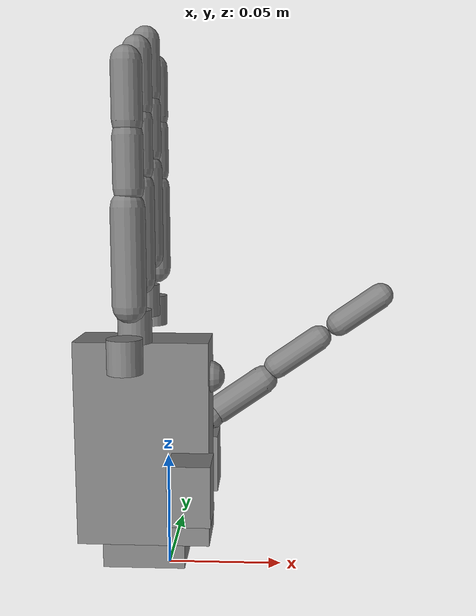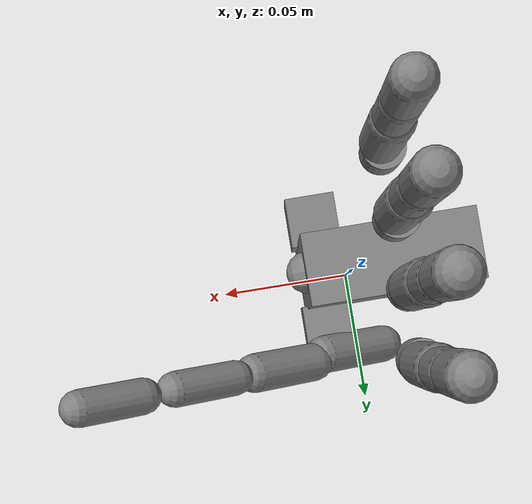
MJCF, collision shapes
<mujoco model="dexhand_noforearm">
  <compiler angle="radian" meshdir="meshes"/>
  <option cone="elliptic" impratio="20"/>

  <default>
    <joint damping="0.75" armature="0.0005" frictionloss="0.05"/>
    <geom contype="1" conaffinity="1" solimp="0.90 0.995 0.0001" solref="0.004 1" margin="0.001"/>
    <default class="visual">
      <geom type="mesh" contype="0" conaffinity="0" group="2"/>
    </default>
    <default class="collision">
      <geom group="3"/>
    </default>
  </default>

  <asset>
    <mesh name="pmbase" content_type="model/stl" file="pmbase.STL"/>
    <mesh name="palm" content_type="model/stl" file="rh/palm.STL"/>
    <mesh name="thbase" content_type="model/stl" file="rh/thbase.STL"/>
    <mesh name="thproximal" content_type="model/stl" file="rh/thproximal.STL"/>
    <mesh name="thmiddle" content_type="model/stl" file="rh/thmiddle.STL"/>
    <mesh name="thdistal" content_type="model/stl" file="rh/thdistal.STL"/>
    <mesh name="ffbase" content_type="model/stl" file="ffbase.STL"/>
    <mesh name="ffproximal" content_type="model/stl" file="ffproximal.STL"/>
    <mesh name="ffmiddle" content_type="model/stl" file="ffmiddle.STL"/>
    <mesh name="ffdistal" content_type="model/stl" file="ffdistal.STL"/>
    <mesh name="mfbase" content_type="model/stl" file="mfbase.STL"/>
    <mesh name="mfproximal" content_type="model/stl" file="mfproximal.STL"/>
    <mesh name="mfmiddle" content_type="model/stl" file="mfmiddle.STL"/>
    <mesh name="mfdistal" content_type="model/stl" file="mfdistal.STL"/>
    <mesh name="rfbase" content_type="model/stl" file="rfbase.STL"/>
    <mesh name="rfproximal" content_type="model/stl" file="rfproximal.STL"/>
    <mesh name="rfmiddle" content_type="model/stl" file="rfmiddle.STL"/>
    <mesh name="rfdistal" content_type="model/stl" file="rfdistal.STL"/>
    <mesh name="lfbase" content_type="model/stl" file="lfbase.STL"/>
    <mesh name="lfproximal" content_type="model/stl" file="lfproximal.STL"/>
    <mesh name="lfmiddle" content_type="model/stl" file="lfmiddle.STL"/>
    <mesh name="lfdistal" content_type="model/stl" file="lfdistal.STL"/>
  </asset>

  <worldbody>
    <body name="pmbase">
      <inertial pos="-0.0107616 0.00349148 0.0560902" quat="0.634109 0.772843 0.0145625 -0.0201681" mass="0.0597286" diaginertia="8.90046e-05 5.56578e-05 3.99883e-05"/>
      <geom class="visual" rgba="0.2 0.2 0.2 1" mesh="pmbase"/>
      <geom class="visual" pos="-0.011315 0 0.01845" quat="0.707105 0 0 -0.707108" rgba="0.2 0.2 0.2 1" mesh="palm"/>
      <geom class="collision" type="box" size="0.029 0.012 0.045" pos="-0.010 0.000 0.058"/>
      <geom class="collision" type="box" size="0.018 0.011 0.018" pos="-0.010 0.000 0.020"/>
      <geom class="collision" type="box" size="0.009 0.009 0.013" pos="0.012 0.020 0.042"/>
      <geom class="collision" type="box" size="0.009 0.009 0.013" pos="0.012 -0.020 0.042"/>
      <geom class="collision" type="capsule" fromto="-0.025 0.0 0.086 0.018 0.0 0.086" size="0.0072"/>
      <body name="thbase" pos="-0.00682539 0.031004 0.043425" quat="0.678446 0.670288 -0.213915 0.211343">
        <inertial pos="0.0152576 0.000588848 -7.11072e-09" quat="0.999802 0.000365614 7.26798e-06 0.0198749" mass="0.00757805" diaginertia="6.43652e-07 4.59263e-07 4.47708e-07"/>
        <joint name="THJ4" pos="0 0 0" axis="-1 0 0" range="-1.0472 1.0472"/>
        <geom class="visual" mesh="thbase"/>
        <geom class="collision" type="capsule" fromto="0 0 0.002 0.028 0 0.002" size="0.0068"/>
        <body name="thproximal" pos="0.031 0 0" quat="0.499998 0.5 0.500002 0.5">
          <inertial pos="0.000292903 -0.000177537 0.0153782" quat="0.747586 -0.0191127 -0.0219453 0.663527" mass="0.00736386" diaginertia="1.0747e-06 8.74636e-07 3.80084e-07"/>
          <joint name="THJ3" pos="0 0 0" axis="1 0 0" range="-1.0472 1.0472"/>
          <geom class="visual" mesh="thproximal"/>
          <geom class="collision" type="capsule" fromto="0 0 0.002 0 0 0.028" size="0.0068"/>
          <body name="thmiddle" pos="0.00175 -0.00027771 0.034999" quat="0.702815 0 0 0.711373">
            <inertial pos="-0.000303319 0.00114992 0.0156212" quat="0.999747 0.00990494 -0.0167304 -0.0112805" mass="0.00547793" diaginertia="9.11692e-07 7.75928e-07 1.9871e-07"/>
            <joint name="THJ2" pos="0 0 0" axis="1 0 0" range="0 1.5708"/>
            <geom class="visual" mesh="thmiddle"/>
            <geom class="collision" type="capsule" fromto="0 0 0.002 0 0 0.026" size="0.0060"/>
            <body name="thdistal" pos="-0.00027986 -0.00017588 0.034998" quat="0.999982 0 0 -0.00606146">
              <inertial pos="-0.000285359 0.00147314 0.0156091" quat="0.689488 -0.0496465 0.0689604 0.719296" mass="0.00619843" diaginertia="4.88891e-07 4.3611e-07 1.78647e-07"/>
              <joint name="THJ1" pos="0 0 0" axis="1 0 0" range="0 1.5708"/>
              <geom class="visual" rgba="0.870588 0.811765 0.764706 1" mesh="thdistal"/>
              <geom class="collision" type="capsule" fromto="0 0 0.003 0 0 0.026" size="0.0060"/>
            </body>
          </body>
        </body>
      </body>
      <body name="ffbase" pos="-0.011922 0.0345 0.11014">
        <inertial pos="0.000964132 -7.31039e-05 0.00792474" quat="0.164195 0.716514 0.148233 0.66157" mass="0.00475659" diaginertia="2.31438e-07 2.26488e-07 1.4484e-07"/>
        <joint name="FFJ4" pos="0 0 0" axis="-1 0 0" range="-0.2618 0.2618"/>
        <geom class="visual" mesh="ffbase"/>
        <geom class="collision" type="cylinder" size="0.0072 0.007"/>
        <body name="ffproximal" pos="0.0023 0 0.018" quat="0.707105 0 0 -0.707108">
          <inertial pos="0.000569318 -0.000998929 0.0231806" quat="0.999921 -0.00749408 -0.00458135 0.00896628" mass="0.00685021" diaginertia="1.57187e-06 1.40302e-06 2.51341e-07"/>
          <joint name="FFJ3" pos="0 0 0" axis="-1 0 0" range="0 1.5708"/>
          <geom class="visual" mesh="ffproximal"/>
          <geom class="collision" type="capsule" fromto="0 0 0.002 0 0 0.040" size="0.0068"/>
          <body name="ffmiddle" pos="0 0.0005 0.045001">
            <inertial pos="0.000252965 -0.00192826 0.0123059" quat="0.999992 -0.00214298 -0.00304222 0.00133568" mass="0.00374845" diaginertia="3.68615e-07 2.94513e-07 1.14354e-07"/>
            <joint name="FFJ2" pos="0 0 0" axis="-1 0 0" range="0 1.5708"/>
            <geom class="visual" mesh="ffmiddle"/>
            <geom class="collision" type="capsule" fromto="0 0 0.002 0 0 0.022" size="0.0060"/>
            <body name="ffdistal" pos="0 0 0.025106">
              <inertial pos="-3.37526e-05 -0.00177234 0.0153058" quat="0.723778 0.0687378 -0.0316666 0.68587" mass="0.00659931" diaginertia="4.93322e-07 4.54286e-07 1.73945e-07"/>
              <joint name="FFJ1" pos="0 0 0" axis="-1 0 0" range="0 1.5708"/>
              <geom class="visual" rgba="0.870588 0.811765 0.764706 1" mesh="ffdistal"/>
              <geom class="collision" type="capsule" fromto="0 0 0.002 0 0 0.024" size="0.0060"/>
            </body>
          </body>
        </body>
      </body>
      <body name="mfbase" pos="-0.0119221 0.0115 0.11814">
        <inertial pos="0.000964133 -7.3104e-05 0.00792474" quat="0.164195 0.716514 0.148233 0.66157" mass="0.00475659" diaginertia="2.31438e-07 2.26488e-07 1.4484e-07"/>
        <joint name="MFJ4" pos="0 0 0" axis="-1 0 0" range="-0.2618 0.2618"/>
        <geom class="visual" mesh="mfbase"/>
        <geom class="collision" type="cylinder" size="0.0072 0.007"/>
        <body name="mfproximal" pos="0.0023 0 0.018" quat="0.707105 0 0 -0.707108">
          <inertial pos="0.000569318 -0.000998929 0.0231806" quat="0.999921 -0.00749408 -0.00458135 0.00896628" mass="0.00685021" diaginertia="1.57187e-06 1.40302e-06 2.51341e-07"/>
          <joint name="MFJ3" pos="0 0 0" axis="-1 0 0" range="0 1.5708"/>
          <geom class="visual" mesh="mfproximal"/>
          <geom class="collision" type="capsule" fromto="0 0 0.002 0 0 0.040" size="0.0068"/>
          <body name="mfmiddle" pos="0 0.0005 0.045001">
            <inertial pos="0.000252965 -0.00192826 0.0123059" quat="0.999992 -0.00214291 -0.0030422 0.00133565" mass="0.00374845" diaginertia="3.68615e-07 2.94513e-07 1.14354e-07"/>
            <joint name="MFJ2" pos="0 0 0" axis="-1 0 0" range="0 1.5708"/>
            <geom class="visual" mesh="mfmiddle"/>
            <geom class="collision" type="capsule" fromto="0 0 0.002 0 0 0.022" size="0.0060"/>
            <body name="mfdistal" pos="0 0 0.025106">
              <inertial pos="-3.37492e-05 -0.00177234 0.0153058" quat="0.723777 0.0687381 -0.0316665 0.685871" mass="0.00659931" diaginertia="4.93322e-07 4.54286e-07 1.73944e-07"/>
              <joint name="MFJ1" pos="0 0 0" axis="-1 0 0" range="0 1.5708"/>
              <geom class="visual" rgba="0.870588 0.811765 0.764706 1" mesh="mfdistal"/>
              <geom class="collision" type="capsule" fromto="0 0 0.002 0 0 0.024" size="0.0060"/>
            </body>
          </body>
        </body>
      </body>
      <body name="rfbase" pos="-0.0119222 -0.0115 0.11014">
        <inertial pos="0.000964133 -7.3104e-05 0.00792474" quat="0.164195 0.716514 0.148233 0.66157" mass="0.00475659" diaginertia="2.31438e-07 2.26488e-07 1.4484e-07"/>
        <joint name="RFJ4" pos="0 0 0" axis="-1 0 0" range="-0.2618 0.2618"/>
        <geom class="visual" mesh="rfbase"/>
        <geom class="collision" type="cylinder" size="0.0072 0.007"/>
        <body name="rfproximal" pos="0.0023 0 0.018" quat="0.707105 0 0 -0.707108">
          <inertial pos="0.000569318 -0.000998929 0.0231806" quat="0.999921 -0.00749408 -0.00458135 0.00896628" mass="0.00685021" diaginertia="1.57187e-06 1.40302e-06 2.51341e-07"/>
          <joint name="RFJ3" pos="0 0 0" axis="-1 0 0" range="0 1.5708"/>
          <geom class="visual" mesh="rfproximal"/>
          <geom class="collision" type="capsule" fromto="0 0 0.002 0 0 0.040" size="0.0068"/>
          <body name="rfmiddle" pos="0 0.0005 0.045001">
            <inertial pos="0.000252962 -0.00192826 0.0123059" quat="0.999992 -0.00214286 -0.00304219 0.00133559" mass="0.00374845" diaginertia="3.68615e-07 2.94513e-07 1.14354e-07"/>
            <joint name="RFJ2" pos="0 0 0" axis="-1 0 0" range="0 1.5708"/>
            <geom class="visual" mesh="rfmiddle"/>
            <geom class="collision" type="capsule" fromto="0 0 0.002 0 0 0.022" size="0.0060"/>
            <body name="rfdistal" pos="0 0 0.025106">
              <inertial pos="-3.3752e-05 -0.00177234 0.0153058" quat="0.723778 0.068738 -0.0316667 0.68587" mass="0.00659931" diaginertia="4.93321e-07 4.54286e-07 1.73944e-07"/>
              <joint name="RFJ1" pos="0 0 0" axis="-1 0 0" range="0 1.5708"/>
              <geom class="visual" rgba="0.870588 0.811765 0.764706 1" mesh="rfdistal"/>
              <geom class="collision" type="capsule" fromto="0 0 0.002 0 0 0.024" size="0.0060"/>
            </body>
          </body>
        </body>
      </body>
      <body name="lfbase" pos="-0.0119223 -0.0345 0.10214">
        <inertial pos="0.000964133 -7.30916e-05 0.00792473" quat="0.164181 0.716517 0.148217 0.661574" mass="0.0047566" diaginertia="2.31439e-07 2.26488e-07 1.4484e-07"/>
        <joint name="LFJ4" pos="0 0 0" axis="-1 0 0" range="-0.2618 0.2618"/>
        <geom class="visual" mesh="lfbase"/>
        <geom class="collision" type="cylinder" size="0.0072 0.007"/>
        <body name="lfproximal" pos="0.0023 0 0.018" quat="0.707105 0 0 -0.707108">
          <inertial pos="0.000569318 -0.000998929 0.0231806" quat="0.999921 -0.00749408 -0.00458135 0.00896628" mass="0.00685021" diaginertia="1.57187e-06 1.40302e-06 2.51341e-07"/>
          <joint name="LFJ3" pos="0 0 0" axis="-1 0 0" range="0 1.5708"/>
          <geom class="visual" mesh="lfproximal"/>
          <geom class="collision" type="capsule" fromto="0 0 0.002 0 0 0.040" size="0.0068"/>
          <body name="lfmiddle" pos="0 0.0005 0.045001">
            <inertial pos="0.000252961 -0.00192826 0.0123059" quat="0.999992 -0.00214304 -0.00304218 0.00133559" mass="0.00374845" diaginertia="3.68615e-07 2.94513e-07 1.14354e-07"/>
            <joint name="LFJ2" pos="0 0 0" axis="-1 0 0" range="0 1.5708"/>
            <geom class="visual" mesh="lfmiddle"/>
            <geom class="collision" type="capsule" fromto="0 0 0.002 0 0 0.022" size="0.0060"/>
            <body name="lfdistal" pos="0 0 0.025106">
              <inertial pos="-3.37525e-05 -0.00177234 0.0153058" quat="0.723778 0.068738 -0.0316667 0.68587" mass="0.0065993" diaginertia="4.93321e-07 4.54286e-07 1.73944e-07"/>
              <joint name="LFJ1" pos="0 0 0" axis="-1 0 0" range="0 1.5708"/>
              <geom class="visual" rgba="0.870588 0.811765 0.764706 1" mesh="lfdistal"/>
              <geom class="collision" type="capsule" fromto="0 0 0.002 0 0 0.024" size="0.0060"/>
            </body>
          </body>
        </body>
      </body>
    </body>
  </worldbody>

  <equality>
    <joint joint1="FFJ1" joint2="FFJ2" polycoef="0 1 0 0 0"/>
    <joint joint1="MFJ1" joint2="MFJ2" polycoef="0 1 0 0 0"/>
    <joint joint1="RFJ1" joint2="RFJ2" polycoef="0 1 0 0 0"/>
    <joint joint1="LFJ1" joint2="LFJ2" polycoef="0 1 0 0 0"/>
  </equality>

  <contact>
    <exclude body1="pmbase" body2="thbase"/>
    <exclude body1="pmbase" body2="thproximal"/>
    <exclude body1="thbase" body2="thproximal"/>
    <exclude body1="thbase" body2="ffbase"/>
    <exclude body1="thproximal" body2="thmiddle"/>
    <exclude body1="thmiddle" body2="thdistal"/>
    <exclude body1="ffbase" body2="ffproximal"/>
    <exclude body1="ffproximal" body2="ffmiddle"/>
    <exclude body1="ffmiddle" body2="ffdistal"/>
    <exclude body1="mfbase" body2="mfproximal"/>
    <exclude body1="mfproximal" body2="mfmiddle"/>
    <exclude body1="mfmiddle" body2="mfdistal"/>
    <exclude body1="rfbase" body2="rfproximal"/>
    <exclude body1="rfproximal" body2="rfmiddle"/>
    <exclude body1="rfmiddle" body2="rfdistal"/>
    <exclude body1="lfbase" body2="lfproximal"/>
    <exclude body1="lfproximal" body2="lfmiddle"/>
    <exclude body1="lfmiddle" body2="lfdistal"/>
  </contact>

  <actuator>
    <position name="A_THJ4" joint="THJ4" kp="0.10" ctrlrange="-1.0472 1.0472" forcerange="-0.45 0.45"/>
    <position name="A_THJ3" joint="THJ3" kp="0.10" ctrlrange="-1.0472 1.0472" forcerange="-0.45 0.45"/>
    <position name="A_THJ2" joint="THJ2" kp="0.11" ctrlrange="0 1.5708" forcerange="-0.50 0.50"/>
    <position name="A_THJ1" joint="THJ1" kp="0.11" ctrlrange="0 1.5708" forcerange="-0.50 0.50"/>
    <position name="A_FFJ4" joint="FFJ4" kp="0.11" ctrlrange="-0.2618 0.2618" forcerange="-0.55 0.55"/>
    <position name="A_FFJ3" joint="FFJ3" kp="0.13" ctrlrange="0 1.5708" forcerange="-0.55 0.55"/>
    <position name="A_FFJ2" joint="FFJ2" kp="0.15" ctrlrange="0 1.5708" forcerange="-0.65 0.65"/>
    <position name="A_MFJ4" joint="MFJ4" kp="0.10" ctrlrange="-0.2618 0.2618" forcerange="-0.45 0.45"/>
    <position name="A_MFJ3" joint="MFJ3" kp="0.12" ctrlrange="0 1.5708" forcerange="-0.45 0.45"/>
    <position name="A_MFJ2" joint="MFJ2" kp="0.13" ctrlrange="0 1.5708" forcerange="-0.55 0.55"/>
    <position name="A_RFJ4" joint="RFJ4" kp="0.11" ctrlrange="-0.2618 0.2618" forcerange="-0.55 0.55"/>
    <position name="A_RFJ3" joint="RFJ3" kp="0.13" ctrlrange="0 1.5708" forcerange="-0.55 0.55"/>
    <position name="A_RFJ2" joint="RFJ2" kp="0.15" ctrlrange="0 1.5708" forcerange="-0.65 0.65"/>
    <position name="A_LFJ4" joint="LFJ4" kp="0.11" ctrlrange="-0.2618 0.2618" forcerange="-0.55 0.55"/>
    <position name="A_LFJ3" joint="LFJ3" kp="0.13" ctrlrange="0 1.5708" forcerange="-0.55 0.55"/>
    <position name="A_LFJ2" joint="LFJ2" kp="0.15" ctrlrange="0 1.5708" forcerange="-0.65 0.65"/>
  </actuator>
</mujoco>
